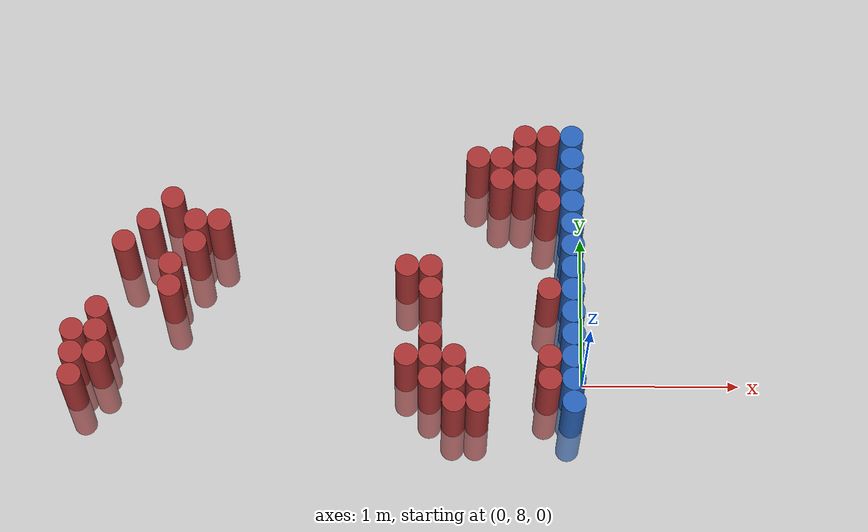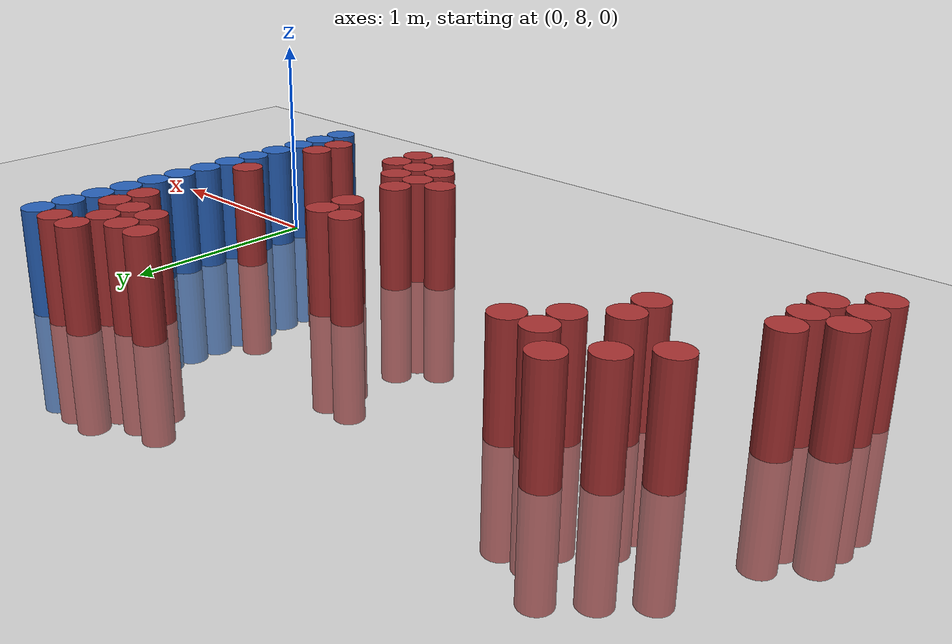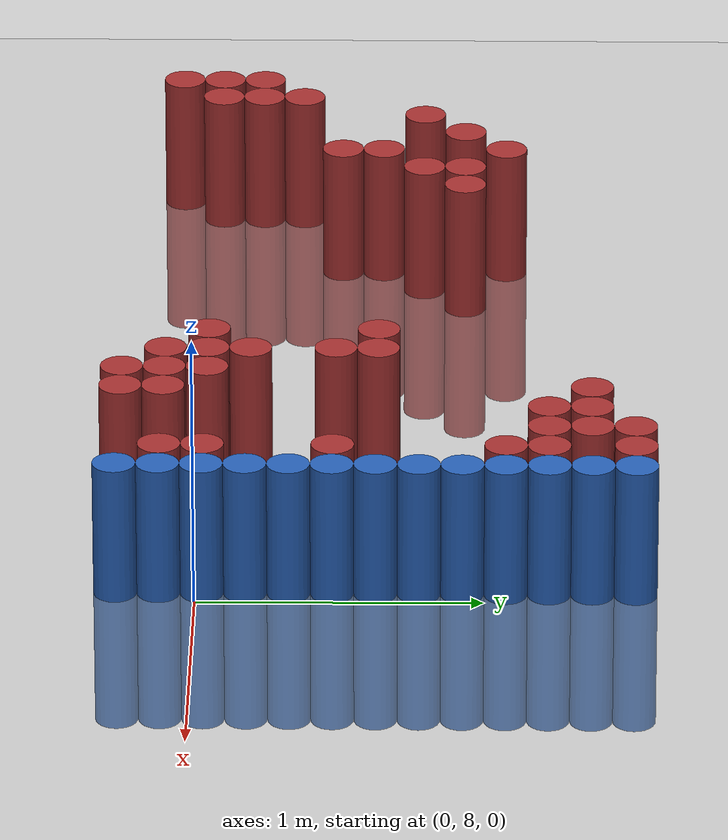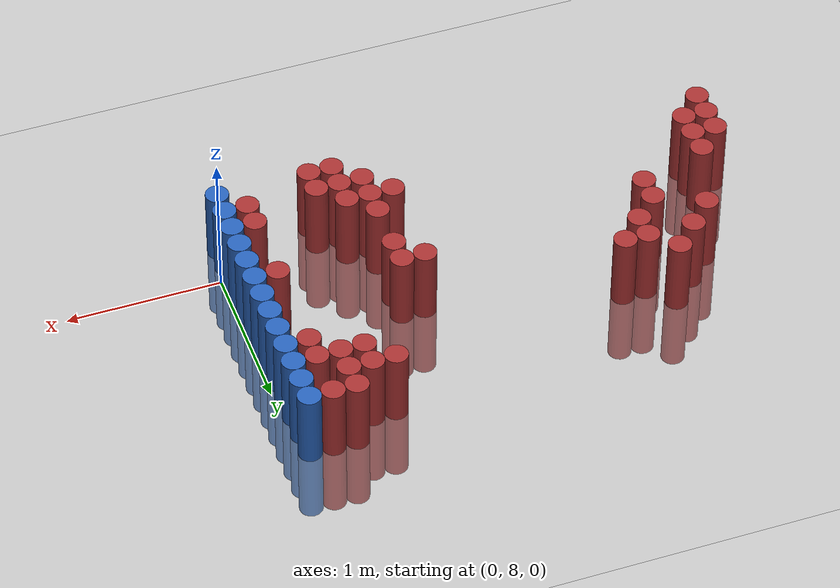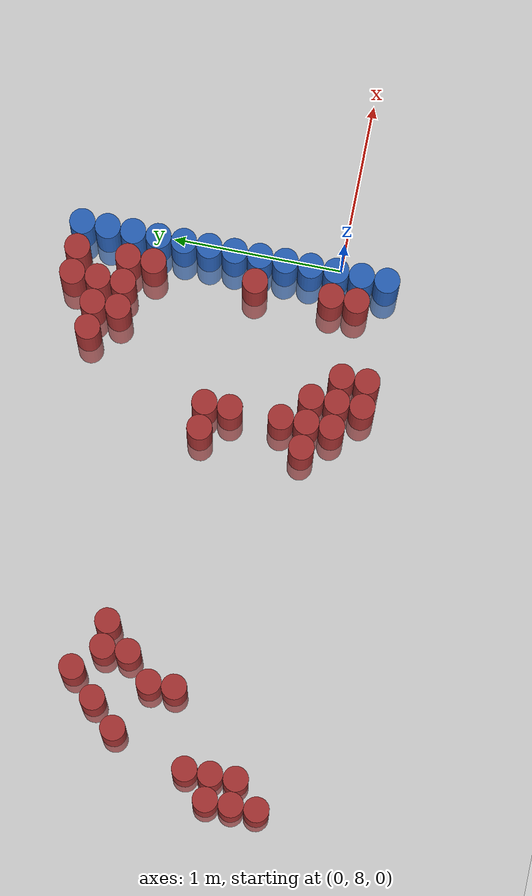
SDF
<sdf version="1.6">
 <world name="default">
  <model name="ground_plane">
   <static>1</static>
   <link name="link">
    <collision name="collision">
     <geometry><plane><normal>0 0 1</normal><size>100 100</size></plane></geometry>
     <surface><friction><ode><mu>100</mu><mu2>50</mu2></ode></friction></surface>
    </collision>
    <visual name="visual">
     <cast_shadows>0</cast_shadows>
     <geometry><plane><normal>0 0 1</normal><size>100 100</size></plane></geometry>
     <material>
      <script><uri>file://media/materials/scripts/gazebo.material</uri><name>Gazebo/Grey</name></script>
     </material>
    </visual>
   </link>
  </model>
  <model name="unit_cylinder_177">
   <static>1</static>
   <pose>-3.225000 7.875000 0.000000 0.000000 0.000000 0.000000</pose>
   <link name="link">
    <inertial>
     <mass>1</mass>
     <inertia><ixx>0.145833</ixx><ixy>0</ixy><ixz>0</ixz><iyy>0.145833</iyy><iyz>0</iyz><izz>0.125</izz></inertia>
    </inertial>
    <collision name="collision">
     <geometry><cylinder><radius>0.075000</radius><length>1</length></cylinder></geometry>
    </collision>
    <visual name="visual">
     <geometry><cylinder><radius>0.075000</radius><length>1</length></cylinder></geometry>
     <material>
      <ambient>0.648000 0.192000 0.192000 1</ambient>
      <diffuse>0.648000 0.192000 0.192000 1</diffuse>
     </material>
     <material>
      <script><name>Gazebo/Grey</name><uri>file://media/materials/scripts/gazebo.material</uri></script>
     </material>
    </visual>
   </link>
  </model>
  <model name="unit_cylinder_178">
   <static>1</static>
   <pose>-3.225000 8.025000 0.000000 0.000000 0.000000 0.000000</pose>
   <link name="link">
    <inertial>
     <mass>1</mass>
     <inertia><ixx>0.145833</ixx><ixy>0</ixy><ixz>0</ixz><iyy>0.145833</iyy><iyz>0</iyz><izz>0.125</izz></inertia>
    </inertial>
    <collision name="collision">
     <geometry><cylinder><radius>0.075000</radius><length>1</length></cylinder></geometry>
    </collision>
    <visual name="visual">
     <geometry><cylinder><radius>0.075000</radius><length>1</length></cylinder></geometry>
     <material>
      <ambient>0.648000 0.192000 0.192000 1</ambient>
      <diffuse>0.648000 0.192000 0.192000 1</diffuse>
     </material>
     <material>
      <script><name>Gazebo/Grey</name><uri>file://media/materials/scripts/gazebo.material</uri></script>
     </material>
    </visual>
   </link>
  </model>
  <model name="unit_cylinder_179">
   <static>1</static>
   <pose>-3.225000 8.175000 0.000000 0.000000 0.000000 0.000000</pose>
   <link name="link">
    <inertial>
     <mass>1</mass>
     <inertia><ixx>0.145833</ixx><ixy>0</ixy><ixz>0</ixz><iyy>0.145833</iyy><iyz>0</iyz><izz>0.125</izz></inertia>
    </inertial>
    <collision name="collision">
     <geometry><cylinder><radius>0.075000</radius><length>1</length></cylinder></geometry>
    </collision>
    <visual name="visual">
     <geometry><cylinder><radius>0.075000</radius><length>1</length></cylinder></geometry>
     <material>
      <ambient>0.648000 0.192000 0.192000 1</ambient>
      <diffuse>0.648000 0.192000 0.192000 1</diffuse>
     </material>
     <material>
      <script><name>Gazebo/Grey</name><uri>file://media/materials/scripts/gazebo.material</uri></script>
     </material>
    </visual>
   </link>
  </model>
  <model name="unit_cylinder_187">
   <static>1</static>
   <pose>-3.075000 8.025000 0.000000 0.000000 0.000000 0.000000</pose>
   <link name="link">
    <inertial>
     <mass>1</mass>
     <inertia><ixx>0.145833</ixx><ixy>0</ixy><ixz>0</ixz><iyy>0.145833</iyy><iyz>0</iyz><izz>0.125</izz></inertia>
    </inertial>
    <collision name="collision">
     <geometry><cylinder><radius>0.075000</radius><length>1</length></cylinder></geometry>
    </collision>
    <visual name="visual">
     <geometry><cylinder><radius>0.075000</radius><length>1</length></cylinder></geometry>
     <material>
      <ambient>0.648000 0.192000 0.192000 1</ambient>
      <diffuse>0.648000 0.192000 0.192000 1</diffuse>
     </material>
     <material>
      <script><name>Gazebo/Grey</name><uri>file://media/materials/scripts/gazebo.material</uri></script>
     </material>
    </visual>
   </link>
  </model>
  <model name="unit_cylinder_188">
   <static>1</static>
   <pose>-3.075000 8.175000 0.000000 0.000000 0.000000 0.000000</pose>
   <link name="link">
    <inertial>
     <mass>1</mass>
     <inertia><ixx>0.145833</ixx><ixy>0</ixy><ixz>0</ixz><iyy>0.145833</iyy><iyz>0</iyz><izz>0.125</izz></inertia>
    </inertial>
    <collision name="collision">
     <geometry><cylinder><radius>0.075000</radius><length>1</length></cylinder></geometry>
    </collision>
    <visual name="visual">
     <geometry><cylinder><radius>0.075000</radius><length>1</length></cylinder></geometry>
     <material>
      <ambient>0.648000 0.192000 0.192000 1</ambient>
      <diffuse>0.648000 0.192000 0.192000 1</diffuse>
     </material>
     <material>
      <script><name>Gazebo/Grey</name><uri>file://media/materials/scripts/gazebo.material</uri></script>
     </material>
    </visual>
   </link>
  </model>
  <model name="unit_cylinder_189">
   <static>1</static>
   <pose>-3.075000 8.325000 0.000000 0.000000 0.000000 0.000000</pose>
   <link name="link">
    <inertial>
     <mass>1</mass>
     <inertia><ixx>0.145833</ixx><ixy>0</ixy><ixz>0</ixz><iyy>0.145833</iyy><iyz>0</iyz><izz>0.125</izz></inertia>
    </inertial>
    <collision name="collision">
     <geometry><cylinder><radius>0.075000</radius><length>1</length></cylinder></geometry>
    </collision>
    <visual name="visual">
     <geometry><cylinder><radius>0.075000</radius><length>1</length></cylinder></geometry>
     <material>
      <ambient>0.648000 0.192000 0.192000 1</ambient>
      <diffuse>0.648000 0.192000 0.192000 1</diffuse>
     </material>
     <material>
      <script><name>Gazebo/Grey</name><uri>file://media/materials/scripts/gazebo.material</uri></script>
     </material>
    </visual>
   </link>
  </model>
  <model name="unit_cylinder_194">
   <static>1</static>
   <pose>-2.925000 8.775000 0.000000 0.000000 0.000000 0.000000</pose>
   <link name="link">
    <inertial>
     <mass>1</mass>
     <inertia><ixx>0.145833</ixx><ixy>0</ixy><ixz>0</ixz><iyy>0.145833</iyy><iyz>0</iyz><izz>0.125</izz></inertia>
    </inertial>
    <collision name="collision">
     <geometry><cylinder><radius>0.075000</radius><length>1</length></cylinder></geometry>
    </collision>
    <visual name="visual">
     <geometry><cylinder><radius>0.075000</radius><length>1</length></cylinder></geometry>
     <material>
      <ambient>0.648000 0.192000 0.192000 1</ambient>
      <diffuse>0.648000 0.192000 0.192000 1</diffuse>
     </material>
     <material>
      <script><name>Gazebo/Grey</name><uri>file://media/materials/scripts/gazebo.material</uri></script>
     </material>
    </visual>
   </link>
  </model>
  <model name="unit_cylinder_197">
   <static>1</static>
   <pose>-2.775000 8.925000 0.000000 0.000000 0.000000 0.000000</pose>
   <link name="link">
    <inertial>
     <mass>1</mass>
     <inertia><ixx>0.145833</ixx><ixy>0</ixy><ixz>0</ixz><iyy>0.145833</iyy><iyz>0</iyz><izz>0.125</izz></inertia>
    </inertial>
    <collision name="collision">
     <geometry><cylinder><radius>0.075000</radius><length>1</length></cylinder></geometry>
    </collision>
    <visual name="visual">
     <geometry><cylinder><radius>0.075000</radius><length>1</length></cylinder></geometry>
     <material>
      <ambient>0.648000 0.192000 0.192000 1</ambient>
      <diffuse>0.648000 0.192000 0.192000 1</diffuse>
     </material>
     <material>
      <script><name>Gazebo/Grey</name><uri>file://media/materials/scripts/gazebo.material</uri></script>
     </material>
    </visual>
   </link>
  </model>
  <model name="unit_cylinder_198">
   <static>1</static>
   <pose>-2.625000 8.475000 0.000000 0.000000 0.000000 0.000000</pose>
   <link name="link">
    <inertial>
     <mass>1</mass>
     <inertia><ixx>0.145833</ixx><ixy>0</ixy><ixz>0</ixz><iyy>0.145833</iyy><iyz>0</iyz><izz>0.125</izz></inertia>
    </inertial>
    <collision name="collision">
     <geometry><cylinder><radius>0.075000</radius><length>1</length></cylinder></geometry>
    </collision>
    <visual name="visual">
     <geometry><cylinder><radius>0.075000</radius><length>1</length></cylinder></geometry>
     <material>
      <ambient>0.648000 0.192000 0.192000 1</ambient>
      <diffuse>0.648000 0.192000 0.192000 1</diffuse>
     </material>
     <material>
      <script><name>Gazebo/Grey</name><uri>file://media/materials/scripts/gazebo.material</uri></script>
     </material>
    </visual>
   </link>
  </model>
  <model name="unit_cylinder_199">
   <static>1</static>
   <pose>-2.625000 8.625000 0.000000 0.000000 0.000000 0.000000</pose>
   <link name="link">
    <inertial>
     <mass>1</mass>
     <inertia><ixx>0.145833</ixx><ixy>0</ixy><ixz>0</ixz><iyy>0.145833</iyy><iyz>0</iyz><izz>0.125</izz></inertia>
    </inertial>
    <collision name="collision">
     <geometry><cylinder><radius>0.075000</radius><length>1</length></cylinder></geometry>
    </collision>
    <visual name="visual">
     <geometry><cylinder><radius>0.075000</radius><length>1</length></cylinder></geometry>
     <material>
      <ambient>0.648000 0.192000 0.192000 1</ambient>
      <diffuse>0.648000 0.192000 0.192000 1</diffuse>
     </material>
     <material>
      <script><name>Gazebo/Grey</name><uri>file://media/materials/scripts/gazebo.material</uri></script>
     </material>
    </visual>
   </link>
  </model>
  <model name="unit_cylinder_200">
   <static>1</static>
   <pose>-2.625000 9.075000 0.000000 0.000000 0.000000 0.000000</pose>
   <link name="link">
    <inertial>
     <mass>1</mass>
     <inertia><ixx>0.145833</ixx><ixy>0</ixy><ixz>0</ixz><iyy>0.145833</iyy><iyz>0</iyz><izz>0.125</izz></inertia>
    </inertial>
    <collision name="collision">
     <geometry><cylinder><radius>0.075000</radius><length>1</length></cylinder></geometry>
    </collision>
    <visual name="visual">
     <geometry><cylinder><radius>0.075000</radius><length>1</length></cylinder></geometry>
     <material>
      <ambient>0.648000 0.192000 0.192000 1</ambient>
      <diffuse>0.648000 0.192000 0.192000 1</diffuse>
     </material>
     <material>
      <script><name>Gazebo/Grey</name><uri>file://media/materials/scripts/gazebo.material</uri></script>
     </material>
    </visual>
   </link>
  </model>
  <model name="unit_cylinder_201">
   <static>1</static>
   <pose>-2.475000 8.775000 0.000000 0.000000 0.000000 0.000000</pose>
   <link name="link">
    <inertial>
     <mass>1</mass>
     <inertia><ixx>0.145833</ixx><ixy>0</ixy><ixz>0</ixz><iyy>0.145833</iyy><iyz>0</iyz><izz>0.125</izz></inertia>
    </inertial>
    <collision name="collision">
     <geometry><cylinder><radius>0.075000</radius><length>1</length></cylinder></geometry>
    </collision>
    <visual name="visual">
     <geometry><cylinder><radius>0.075000</radius><length>1</length></cylinder></geometry>
     <material>
      <ambient>0.648000 0.192000 0.192000 1</ambient>
      <diffuse>0.648000 0.192000 0.192000 1</diffuse>
     </material>
     <material>
      <script><name>Gazebo/Grey</name><uri>file://media/materials/scripts/gazebo.material</uri></script>
     </material>
    </visual>
   </link>
  </model>
  <model name="unit_cylinder_202">
   <static>1</static>
   <pose>-2.475000 8.925000 0.000000 0.000000 0.000000 0.000000</pose>
   <link name="link">
    <inertial>
     <mass>1</mass>
     <inertia><ixx>0.145833</ixx><ixy>0</ixy><ixz>0</ixz><iyy>0.145833</iyy><iyz>0</iyz><izz>0.125</izz></inertia>
    </inertial>
    <collision name="collision">
     <geometry><cylinder><radius>0.075000</radius><length>1</length></cylinder></geometry>
    </collision>
    <visual name="visual">
     <geometry><cylinder><radius>0.075000</radius><length>1</length></cylinder></geometry>
     <material>
      <ambient>0.648000 0.192000 0.192000 1</ambient>
      <diffuse>0.648000 0.192000 0.192000 1</diffuse>
     </material>
     <material>
      <script><name>Gazebo/Grey</name><uri>file://media/materials/scripts/gazebo.material</uri></script>
     </material>
    </visual>
   </link>
  </model>
  <model name="unit_cylinder_203">
   <static>1</static>
   <pose>-2.325000 8.925000 0.000000 0.000000 0.000000 0.000000</pose>
   <link name="link">
    <inertial>
     <mass>1</mass>
     <inertia><ixx>0.145833</ixx><ixy>0</ixy><ixz>0</ixz><iyy>0.145833</iyy><iyz>0</iyz><izz>0.125</izz></inertia>
    </inertial>
    <collision name="collision">
     <geometry><cylinder><radius>0.075000</radius><length>1</length></cylinder></geometry>
    </collision>
    <visual name="visual">
     <geometry><cylinder><radius>0.075000</radius><length>1</length></cylinder></geometry>
     <material>
      <ambient>0.648000 0.192000 0.192000 1</ambient>
      <diffuse>0.648000 0.192000 0.192000 1</diffuse>
     </material>
     <material>
      <script><name>Gazebo/Grey</name><uri>file://media/materials/scripts/gazebo.material</uri></script>
     </material>
    </visual>
   </link>
  </model>
  <model name="unit_cylinder_223">
   <static>1</static>
   <pose>-1.125000 8.025000 0.000000 0.000000 0.000000 0.000000</pose>
   <link name="link">
    <inertial>
     <mass>1</mass>
     <inertia><ixx>0.145833</ixx><ixy>0</ixy><ixz>0</ixz><iyy>0.145833</iyy><iyz>0</iyz><izz>0.125</izz></inertia>
    </inertial>
    <collision name="collision">
     <geometry><cylinder><radius>0.075000</radius><length>1</length></cylinder></geometry>
    </collision>
    <visual name="visual">
     <geometry><cylinder><radius>0.075000</radius><length>1</length></cylinder></geometry>
     <material>
      <ambient>0.648000 0.192000 0.192000 1</ambient>
      <diffuse>0.648000 0.192000 0.192000 1</diffuse>
     </material>
     <material>
      <script><name>Gazebo/Grey</name><uri>file://media/materials/scripts/gazebo.material</uri></script>
     </material>
    </visual>
   </link>
  </model>
  <model name="unit_cylinder_224">
   <static>1</static>
   <pose>-1.125000 8.625000 0.000000 0.000000 0.000000 0.000000</pose>
   <link name="link">
    <inertial>
     <mass>1</mass>
     <inertia><ixx>0.145833</ixx><ixy>0</ixy><ixz>0</ixz><iyy>0.145833</iyy><iyz>0</iyz><izz>0.125</izz></inertia>
    </inertial>
    <collision name="collision">
     <geometry><cylinder><radius>0.075000</radius><length>1</length></cylinder></geometry>
    </collision>
    <visual name="visual">
     <geometry><cylinder><radius>0.075000</radius><length>1</length></cylinder></geometry>
     <material>
      <ambient>0.648000 0.192000 0.192000 1</ambient>
      <diffuse>0.648000 0.192000 0.192000 1</diffuse>
     </material>
     <material>
      <script><name>Gazebo/Grey</name><uri>file://media/materials/scripts/gazebo.material</uri></script>
     </material>
    </visual>
   </link>
  </model>
  <model name="unit_cylinder_231">
   <static>1</static>
   <pose>-0.975000 7.875000 0.000000 0.000000 0.000000 0.000000</pose>
   <link name="link">
    <inertial>
     <mass>1</mass>
     <inertia><ixx>0.145833</ixx><ixy>0</ixy><ixz>0</ixz><iyy>0.145833</iyy><iyz>0</iyz><izz>0.125</izz></inertia>
    </inertial>
    <collision name="collision">
     <geometry><cylinder><radius>0.075000</radius><length>1</length></cylinder></geometry>
    </collision>
    <visual name="visual">
     <geometry><cylinder><radius>0.075000</radius><length>1</length></cylinder></geometry>
     <material>
      <ambient>0.648000 0.192000 0.192000 1</ambient>
      <diffuse>0.648000 0.192000 0.192000 1</diffuse>
     </material>
     <material>
      <script><name>Gazebo/Grey</name><uri>file://media/materials/scripts/gazebo.material</uri></script>
     </material>
    </visual>
   </link>
  </model>
  <model name="unit_cylinder_232">
   <static>1</static>
   <pose>-0.975000 8.025000 0.000000 0.000000 0.000000 0.000000</pose>
   <link name="link">
    <inertial>
     <mass>1</mass>
     <inertia><ixx>0.145833</ixx><ixy>0</ixy><ixz>0</ixz><iyy>0.145833</iyy><iyz>0</iyz><izz>0.125</izz></inertia>
    </inertial>
    <collision name="collision">
     <geometry><cylinder><radius>0.075000</radius><length>1</length></cylinder></geometry>
    </collision>
    <visual name="visual">
     <geometry><cylinder><radius>0.075000</radius><length>1</length></cylinder></geometry>
     <material>
      <ambient>0.648000 0.192000 0.192000 1</ambient>
      <diffuse>0.648000 0.192000 0.192000 1</diffuse>
     </material>
     <material>
      <script><name>Gazebo/Grey</name><uri>file://media/materials/scripts/gazebo.material</uri></script>
     </material>
    </visual>
   </link>
  </model>
  <model name="unit_cylinder_233">
   <static>1</static>
   <pose>-0.975000 8.175000 0.000000 0.000000 0.000000 0.000000</pose>
   <link name="link">
    <inertial>
     <mass>1</mass>
     <inertia><ixx>0.145833</ixx><ixy>0</ixy><ixz>0</ixz><iyy>0.145833</iyy><iyz>0</iyz><izz>0.125</izz></inertia>
    </inertial>
    <collision name="collision">
     <geometry><cylinder><radius>0.075000</radius><length>1</length></cylinder></geometry>
    </collision>
    <visual name="visual">
     <geometry><cylinder><radius>0.075000</radius><length>1</length></cylinder></geometry>
     <material>
      <ambient>0.648000 0.192000 0.192000 1</ambient>
      <diffuse>0.648000 0.192000 0.192000 1</diffuse>
     </material>
     <material>
      <script><name>Gazebo/Grey</name><uri>file://media/materials/scripts/gazebo.material</uri></script>
     </material>
    </visual>
   </link>
  </model>
  <model name="unit_cylinder_234">
   <static>1</static>
   <pose>-0.975000 8.475000 0.000000 0.000000 0.000000 0.000000</pose>
   <link name="link">
    <inertial>
     <mass>1</mass>
     <inertia><ixx>0.145833</ixx><ixy>0</ixy><ixz>0</ixz><iyy>0.145833</iyy><iyz>0</iyz><izz>0.125</izz></inertia>
    </inertial>
    <collision name="collision">
     <geometry><cylinder><radius>0.075000</radius><length>1</length></cylinder></geometry>
    </collision>
    <visual name="visual">
     <geometry><cylinder><radius>0.075000</radius><length>1</length></cylinder></geometry>
     <material>
      <ambient>0.648000 0.192000 0.192000 1</ambient>
      <diffuse>0.648000 0.192000 0.192000 1</diffuse>
     </material>
     <material>
      <script><name>Gazebo/Grey</name><uri>file://media/materials/scripts/gazebo.material</uri></script>
     </material>
    </visual>
   </link>
  </model>
  <model name="unit_cylinder_235">
   <static>1</static>
   <pose>-0.975000 8.625000 0.000000 0.000000 0.000000 0.000000</pose>
   <link name="link">
    <inertial>
     <mass>1</mass>
     <inertia><ixx>0.145833</ixx><ixy>0</ixy><ixz>0</ixz><iyy>0.145833</iyy><iyz>0</iyz><izz>0.125</izz></inertia>
    </inertial>
    <collision name="collision">
     <geometry><cylinder><radius>0.075000</radius><length>1</length></cylinder></geometry>
    </collision>
    <visual name="visual">
     <geometry><cylinder><radius>0.075000</radius><length>1</length></cylinder></geometry>
     <material>
      <ambient>0.648000 0.192000 0.192000 1</ambient>
      <diffuse>0.648000 0.192000 0.192000 1</diffuse>
     </material>
     <material>
      <script><name>Gazebo/Grey</name><uri>file://media/materials/scripts/gazebo.material</uri></script>
     </material>
    </visual>
   </link>
  </model>
  <model name="unit_cylinder_241">
   <static>1</static>
   <pose>-0.825000 7.725000 0.000000 0.000000 0.000000 0.000000</pose>
   <link name="link">
    <inertial>
     <mass>1</mass>
     <inertia><ixx>0.145833</ixx><ixy>0</ixy><ixz>0</ixz><iyy>0.145833</iyy><iyz>0</iyz><izz>0.125</izz></inertia>
    </inertial>
    <collision name="collision">
     <geometry><cylinder><radius>0.075000</radius><length>1</length></cylinder></geometry>
    </collision>
    <visual name="visual">
     <geometry><cylinder><radius>0.075000</radius><length>1</length></cylinder></geometry>
     <material>
      <ambient>0.648000 0.192000 0.192000 1</ambient>
      <diffuse>0.648000 0.192000 0.192000 1</diffuse>
     </material>
     <material>
      <script><name>Gazebo/Grey</name><uri>file://media/materials/scripts/gazebo.material</uri></script>
     </material>
    </visual>
   </link>
  </model>
  <model name="unit_cylinder_242">
   <static>1</static>
   <pose>-0.825000 7.875000 0.000000 0.000000 0.000000 0.000000</pose>
   <link name="link">
    <inertial>
     <mass>1</mass>
     <inertia><ixx>0.145833</ixx><ixy>0</ixy><ixz>0</ixz><iyy>0.145833</iyy><iyz>0</iyz><izz>0.125</izz></inertia>
    </inertial>
    <collision name="collision">
     <geometry><cylinder><radius>0.075000</radius><length>1</length></cylinder></geometry>
    </collision>
    <visual name="visual">
     <geometry><cylinder><radius>0.075000</radius><length>1</length></cylinder></geometry>
     <material>
      <ambient>0.648000 0.192000 0.192000 1</ambient>
      <diffuse>0.648000 0.192000 0.192000 1</diffuse>
     </material>
     <material>
      <script><name>Gazebo/Grey</name><uri>file://media/materials/scripts/gazebo.material</uri></script>
     </material>
    </visual>
   </link>
  </model>
  <model name="unit_cylinder_243">
   <static>1</static>
   <pose>-0.825000 8.025000 0.000000 0.000000 0.000000 0.000000</pose>
   <link name="link">
    <inertial>
     <mass>1</mass>
     <inertia><ixx>0.145833</ixx><ixy>0</ixy><ixz>0</ixz><iyy>0.145833</iyy><iyz>0</iyz><izz>0.125</izz></inertia>
    </inertial>
    <collision name="collision">
     <geometry><cylinder><radius>0.075000</radius><length>1</length></cylinder></geometry>
    </collision>
    <visual name="visual">
     <geometry><cylinder><radius>0.075000</radius><length>1</length></cylinder></geometry>
     <material>
      <ambient>0.648000 0.192000 0.192000 1</ambient>
      <diffuse>0.648000 0.192000 0.192000 1</diffuse>
     </material>
     <material>
      <script><name>Gazebo/Grey</name><uri>file://media/materials/scripts/gazebo.material</uri></script>
     </material>
    </visual>
   </link>
  </model>
  <model name="unit_cylinder_247">
   <static>1</static>
   <pose>-0.675000 7.725000 0.000000 0.000000 0.000000 0.000000</pose>
   <link name="link">
    <inertial>
     <mass>1</mass>
     <inertia><ixx>0.145833</ixx><ixy>0</ixy><ixz>0</ixz><iyy>0.145833</iyy><iyz>0</iyz><izz>0.125</izz></inertia>
    </inertial>
    <collision name="collision">
     <geometry><cylinder><radius>0.075000</radius><length>1</length></cylinder></geometry>
    </collision>
    <visual name="visual">
     <geometry><cylinder><radius>0.075000</radius><length>1</length></cylinder></geometry>
     <material>
      <ambient>0.648000 0.192000 0.192000 1</ambient>
      <diffuse>0.648000 0.192000 0.192000 1</diffuse>
     </material>
     <material>
      <script><name>Gazebo/Grey</name><uri>file://media/materials/scripts/gazebo.material</uri></script>
     </material>
    </visual>
   </link>
  </model>
  <model name="unit_cylinder_248">
   <static>1</static>
   <pose>-0.675000 7.875000 0.000000 0.000000 0.000000 0.000000</pose>
   <link name="link">
    <inertial>
     <mass>1</mass>
     <inertia><ixx>0.145833</ixx><ixy>0</ixy><ixz>0</ixz><iyy>0.145833</iyy><iyz>0</iyz><izz>0.125</izz></inertia>
    </inertial>
    <collision name="collision">
     <geometry><cylinder><radius>0.075000</radius><length>1</length></cylinder></geometry>
    </collision>
    <visual name="visual">
     <geometry><cylinder><radius>0.075000</radius><length>1</length></cylinder></geometry>
     <material>
      <ambient>0.648000 0.192000 0.192000 1</ambient>
      <diffuse>0.648000 0.192000 0.192000 1</diffuse>
     </material>
     <material>
      <script><name>Gazebo/Grey</name><uri>file://media/materials/scripts/gazebo.material</uri></script>
     </material>
    </visual>
   </link>
  </model>
  <model name="unit_cylinder_249">
   <static>1</static>
   <pose>-0.675000 9.375000 0.000000 0.000000 0.000000 0.000000</pose>
   <link name="link">
    <inertial>
     <mass>1</mass>
     <inertia><ixx>0.145833</ixx><ixy>0</ixy><ixz>0</ixz><iyy>0.145833</iyy><iyz>0</iyz><izz>0.125</izz></inertia>
    </inertial>
    <collision name="collision">
     <geometry><cylinder><radius>0.075000</radius><length>1</length></cylinder></geometry>
    </collision>
    <visual name="visual">
     <geometry><cylinder><radius>0.075000</radius><length>1</length></cylinder></geometry>
     <material>
      <ambient>0.648000 0.192000 0.192000 1</ambient>
      <diffuse>0.648000 0.192000 0.192000 1</diffuse>
     </material>
     <material>
      <script><name>Gazebo/Grey</name><uri>file://media/materials/scripts/gazebo.material</uri></script>
     </material>
    </visual>
   </link>
  </model>
  <model name="unit_cylinder_252">
   <static>1</static>
   <pose>-0.525000 9.225000 0.000000 0.000000 0.000000 0.000000</pose>
   <link name="link">
    <inertial>
     <mass>1</mass>
     <inertia><ixx>0.145833</ixx><ixy>0</ixy><ixz>0</ixz><iyy>0.145833</iyy><iyz>0</iyz><izz>0.125</izz></inertia>
    </inertial>
    <collision name="collision">
     <geometry><cylinder><radius>0.075000</radius><length>1</length></cylinder></geometry>
    </collision>
    <visual name="visual">
     <geometry><cylinder><radius>0.075000</radius><length>1</length></cylinder></geometry>
     <material>
      <ambient>0.648000 0.192000 0.192000 1</ambient>
      <diffuse>0.648000 0.192000 0.192000 1</diffuse>
     </material>
     <material>
      <script><name>Gazebo/Grey</name><uri>file://media/materials/scripts/gazebo.material</uri></script>
     </material>
    </visual>
   </link>
  </model>
  <model name="unit_cylinder_253">
   <static>1</static>
   <pose>-0.525000 9.375000 0.000000 0.000000 0.000000 0.000000</pose>
   <link name="link">
    <inertial>
     <mass>1</mass>
     <inertia><ixx>0.145833</ixx><ixy>0</ixy><ixz>0</ixz><iyy>0.145833</iyy><iyz>0</iyz><izz>0.125</izz></inertia>
    </inertial>
    <collision name="collision">
     <geometry><cylinder><radius>0.075000</radius><length>1</length></cylinder></geometry>
    </collision>
    <visual name="visual">
     <geometry><cylinder><radius>0.075000</radius><length>1</length></cylinder></geometry>
     <material>
      <ambient>0.648000 0.192000 0.192000 1</ambient>
      <diffuse>0.648000 0.192000 0.192000 1</diffuse>
     </material>
     <material>
      <script><name>Gazebo/Grey</name><uri>file://media/materials/scripts/gazebo.material</uri></script>
     </material>
    </visual>
   </link>
  </model>
  <model name="unit_cylinder_259">
   <static>1</static>
   <pose>-0.375000 9.225000 0.000000 0.000000 0.000000 0.000000</pose>
   <link name="link">
    <inertial>
     <mass>1</mass>
     <inertia><ixx>0.145833</ixx><ixy>0</ixy><ixz>0</ixz><iyy>0.145833</iyy><iyz>0</iyz><izz>0.125</izz></inertia>
    </inertial>
    <collision name="collision">
     <geometry><cylinder><radius>0.075000</radius><length>1</length></cylinder></geometry>
    </collision>
    <visual name="visual">
     <geometry><cylinder><radius>0.075000</radius><length>1</length></cylinder></geometry>
     <material>
      <ambient>0.648000 0.192000 0.192000 1</ambient>
      <diffuse>0.648000 0.192000 0.192000 1</diffuse>
     </material>
     <material>
      <script><name>Gazebo/Grey</name><uri>file://media/materials/scripts/gazebo.material</uri></script>
     </material>
    </visual>
   </link>
  </model>
  <model name="unit_cylinder_260">
   <static>1</static>
   <pose>-0.375000 9.375000 0.000000 0.000000 0.000000 0.000000</pose>
   <link name="link">
    <inertial>
     <mass>1</mass>
     <inertia><ixx>0.145833</ixx><ixy>0</ixy><ixz>0</ixz><iyy>0.145833</iyy><iyz>0</iyz><izz>0.125</izz></inertia>
    </inertial>
    <collision name="collision">
     <geometry><cylinder><radius>0.075000</radius><length>1</length></cylinder></geometry>
    </collision>
    <visual name="visual">
     <geometry><cylinder><radius>0.075000</radius><length>1</length></cylinder></geometry>
     <material>
      <ambient>0.648000 0.192000 0.192000 1</ambient>
      <diffuse>0.648000 0.192000 0.192000 1</diffuse>
     </material>
     <material>
      <script><name>Gazebo/Grey</name><uri>file://media/materials/scripts/gazebo.material</uri></script>
     </material>
    </visual>
   </link>
  </model>
  <model name="unit_cylinder_261">
   <static>1</static>
   <pose>-0.375000 9.525000 0.000000 0.000000 0.000000 0.000000</pose>
   <link name="link">
    <inertial>
     <mass>1</mass>
     <inertia><ixx>0.145833</ixx><ixy>0</ixy><ixz>0</ixz><iyy>0.145833</iyy><iyz>0</iyz><izz>0.125</izz></inertia>
    </inertial>
    <collision name="collision">
     <geometry><cylinder><radius>0.075000</radius><length>1</length></cylinder></geometry>
    </collision>
    <visual name="visual">
     <geometry><cylinder><radius>0.075000</radius><length>1</length></cylinder></geometry>
     <material>
      <ambient>0.648000 0.192000 0.192000 1</ambient>
      <diffuse>0.648000 0.192000 0.192000 1</diffuse>
     </material>
     <material>
      <script><name>Gazebo/Grey</name><uri>file://media/materials/scripts/gazebo.material</uri></script>
     </material>
    </visual>
   </link>
  </model>
  <model name="unit_cylinder_271">
   <static>1</static>
   <pose>-0.225000 7.875000 0.000000 0.000000 0.000000 0.000000</pose>
   <link name="link">
    <inertial>
     <mass>1</mass>
     <inertia><ixx>0.145833</ixx><ixy>0</ixy><ixz>0</ixz><iyy>0.145833</iyy><iyz>0</iyz><izz>0.125</izz></inertia>
    </inertial>
    <collision name="collision">
     <geometry><cylinder><radius>0.075000</radius><length>1</length></cylinder></geometry>
    </collision>
    <visual name="visual">
     <geometry><cylinder><radius>0.075000</radius><length>1</length></cylinder></geometry>
     <material>
      <ambient>0.648000 0.192000 0.192000 1</ambient>
      <diffuse>0.648000 0.192000 0.192000 1</diffuse>
     </material>
     <material>
      <script><name>Gazebo/Grey</name><uri>file://media/materials/scripts/gazebo.material</uri></script>
     </material>
    </visual>
   </link>
  </model>
  <model name="unit_cylinder_272">
   <static>1</static>
   <pose>-0.225000 8.025000 0.000000 0.000000 0.000000 0.000000</pose>
   <link name="link">
    <inertial>
     <mass>1</mass>
     <inertia><ixx>0.145833</ixx><ixy>0</ixy><ixz>0</ixz><iyy>0.145833</iyy><iyz>0</iyz><izz>0.125</izz></inertia>
    </inertial>
    <collision name="collision">
     <geometry><cylinder><radius>0.075000</radius><length>1</length></cylinder></geometry>
    </collision>
    <visual name="visual">
     <geometry><cylinder><radius>0.075000</radius><length>1</length></cylinder></geometry>
     <material>
      <ambient>0.648000 0.192000 0.192000 1</ambient>
      <diffuse>0.648000 0.192000 0.192000 1</diffuse>
     </material>
     <material>
      <script><name>Gazebo/Grey</name><uri>file://media/materials/scripts/gazebo.material</uri></script>
     </material>
    </visual>
   </link>
  </model>
  <model name="unit_cylinder_273">
   <static>1</static>
   <pose>-0.225000 8.475000 0.000000 0.000000 0.000000 0.000000</pose>
   <link name="link">
    <inertial>
     <mass>1</mass>
     <inertia><ixx>0.145833</ixx><ixy>0</ixy><ixz>0</ixz><iyy>0.145833</iyy><iyz>0</iyz><izz>0.125</izz></inertia>
    </inertial>
    <collision name="collision">
     <geometry><cylinder><radius>0.075000</radius><length>1</length></cylinder></geometry>
    </collision>
    <visual name="visual">
     <geometry><cylinder><radius>0.075000</radius><length>1</length></cylinder></geometry>
     <material>
      <ambient>0.648000 0.192000 0.192000 1</ambient>
      <diffuse>0.648000 0.192000 0.192000 1</diffuse>
     </material>
     <material>
      <script><name>Gazebo/Grey</name><uri>file://media/materials/scripts/gazebo.material</uri></script>
     </material>
    </visual>
   </link>
  </model>
  <model name="unit_cylinder_274">
   <static>1</static>
   <pose>-0.225000 9.075000 0.000000 0.000000 0.000000 0.000000</pose>
   <link name="link">
    <inertial>
     <mass>1</mass>
     <inertia><ixx>0.145833</ixx><ixy>0</ixy><ixz>0</ixz><iyy>0.145833</iyy><iyz>0</iyz><izz>0.125</izz></inertia>
    </inertial>
    <collision name="collision">
     <geometry><cylinder><radius>0.075000</radius><length>1</length></cylinder></geometry>
    </collision>
    <visual name="visual">
     <geometry><cylinder><radius>0.075000</radius><length>1</length></cylinder></geometry>
     <material>
      <ambient>0.648000 0.192000 0.192000 1</ambient>
      <diffuse>0.648000 0.192000 0.192000 1</diffuse>
     </material>
     <material>
      <script><name>Gazebo/Grey</name><uri>file://media/materials/scripts/gazebo.material</uri></script>
     </material>
    </visual>
   </link>
  </model>
  <model name="unit_cylinder_275">
   <static>1</static>
   <pose>-0.225000 9.225000 0.000000 0.000000 0.000000 0.000000</pose>
   <link name="link">
    <inertial>
     <mass>1</mass>
     <inertia><ixx>0.145833</ixx><ixy>0</ixy><ixz>0</ixz><iyy>0.145833</iyy><iyz>0</iyz><izz>0.125</izz></inertia>
    </inertial>
    <collision name="collision">
     <geometry><cylinder><radius>0.075000</radius><length>1</length></cylinder></geometry>
    </collision>
    <visual name="visual">
     <geometry><cylinder><radius>0.075000</radius><length>1</length></cylinder></geometry>
     <material>
      <ambient>0.648000 0.192000 0.192000 1</ambient>
      <diffuse>0.648000 0.192000 0.192000 1</diffuse>
     </material>
     <material>
      <script><name>Gazebo/Grey</name><uri>file://media/materials/scripts/gazebo.material</uri></script>
     </material>
    </visual>
   </link>
  </model>
  <model name="unit_cylinder_276">
   <static>1</static>
   <pose>-0.225000 9.525000 0.000000 0.000000 0.000000 0.000000</pose>
   <link name="link">
    <inertial>
     <mass>1</mass>
     <inertia><ixx>0.145833</ixx><ixy>0</ixy><ixz>0</ixz><iyy>0.145833</iyy><iyz>0</iyz><izz>0.125</izz></inertia>
    </inertial>
    <collision name="collision">
     <geometry><cylinder><radius>0.075000</radius><length>1</length></cylinder></geometry>
    </collision>
    <visual name="visual">
     <geometry><cylinder><radius>0.075000</radius><length>1</length></cylinder></geometry>
     <material>
      <ambient>0.648000 0.192000 0.192000 1</ambient>
      <diffuse>0.648000 0.192000 0.192000 1</diffuse>
     </material>
     <material>
      <script><name>Gazebo/Grey</name><uri>file://media/materials/scripts/gazebo.material</uri></script>
     </material>
    </visual>
   </link>
  </model>
  <model name="unit_cylinder_294">
   <static>1</static>
   <pose>-0.075000 7.725000 0.000000 0.000000 0.000000 0.000000</pose>
   <link name="link">
    <inertial>
     <mass>1</mass>
     <inertia><ixx>0.145833</ixx><ixy>0</ixy><ixz>0</ixz><iyy>0.145833</iyy><iyz>0</iyz><izz>0.125</izz></inertia>
    </inertial>
    <collision name="collision">
     <geometry><cylinder><radius>0.075000</radius><length>1</length></cylinder></geometry>
    </collision>
    <visual name="visual">
     <geometry><cylinder><radius>0.075000</radius><length>1</length></cylinder></geometry>
     <material>
      <ambient>0.152000 0.379000 0.720000 1</ambient>
      <diffuse>0.152000 0.379000 0.720000 1</diffuse>
     </material>
     <material>
      <script><name>Gazebo/Grey</name><uri>file://media/materials/scripts/gazebo.material</uri></script>
     </material>
    </visual>
   </link>
  </model>
  <model name="unit_cylinder_295">
   <static>1</static>
   <pose>-0.075000 7.875000 0.000000 0.000000 0.000000 0.000000</pose>
   <link name="link">
    <inertial>
     <mass>1</mass>
     <inertia><ixx>0.145833</ixx><ixy>0</ixy><ixz>0</ixz><iyy>0.145833</iyy><iyz>0</iyz><izz>0.125</izz></inertia>
    </inertial>
    <collision name="collision">
     <geometry><cylinder><radius>0.075000</radius><length>1</length></cylinder></geometry>
    </collision>
    <visual name="visual">
     <geometry><cylinder><radius>0.075000</radius><length>1</length></cylinder></geometry>
     <material>
      <ambient>0.152000 0.379000 0.720000 1</ambient>
      <diffuse>0.152000 0.379000 0.720000 1</diffuse>
     </material>
     <material>
      <script><name>Gazebo/Grey</name><uri>file://media/materials/scripts/gazebo.material</uri></script>
     </material>
    </visual>
   </link>
  </model>
  <model name="unit_cylinder_296">
   <static>1</static>
   <pose>-0.075000 8.025000 0.000000 0.000000 0.000000 0.000000</pose>
   <link name="link">
    <inertial>
     <mass>1</mass>
     <inertia><ixx>0.145833</ixx><ixy>0</ixy><ixz>0</ixz><iyy>0.145833</iyy><iyz>0</iyz><izz>0.125</izz></inertia>
    </inertial>
    <collision name="collision">
     <geometry><cylinder><radius>0.075000</radius><length>1</length></cylinder></geometry>
    </collision>
    <visual name="visual">
     <geometry><cylinder><radius>0.075000</radius><length>1</length></cylinder></geometry>
     <material>
      <ambient>0.152000 0.379000 0.720000 1</ambient>
      <diffuse>0.152000 0.379000 0.720000 1</diffuse>
     </material>
     <material>
      <script><name>Gazebo/Grey</name><uri>file://media/materials/scripts/gazebo.material</uri></script>
     </material>
    </visual>
   </link>
  </model>
  <model name="unit_cylinder_297">
   <static>1</static>
   <pose>-0.075000 8.175000 0.000000 0.000000 0.000000 0.000000</pose>
   <link name="link">
    <inertial>
     <mass>1</mass>
     <inertia><ixx>0.145833</ixx><ixy>0</ixy><ixz>0</ixz><iyy>0.145833</iyy><iyz>0</iyz><izz>0.125</izz></inertia>
    </inertial>
    <collision name="collision">
     <geometry><cylinder><radius>0.075000</radius><length>1</length></cylinder></geometry>
    </collision>
    <visual name="visual">
     <geometry><cylinder><radius>0.075000</radius><length>1</length></cylinder></geometry>
     <material>
      <ambient>0.152000 0.379000 0.720000 1</ambient>
      <diffuse>0.152000 0.379000 0.720000 1</diffuse>
     </material>
     <material>
      <script><name>Gazebo/Grey</name><uri>file://media/materials/scripts/gazebo.material</uri></script>
     </material>
    </visual>
   </link>
  </model>
  <model name="unit_cylinder_298">
   <static>1</static>
   <pose>-0.075000 8.325000 0.000000 0.000000 0.000000 0.000000</pose>
   <link name="link">
    <inertial>
     <mass>1</mass>
     <inertia><ixx>0.145833</ixx><ixy>0</ixy><ixz>0</ixz><iyy>0.145833</iyy><iyz>0</iyz><izz>0.125</izz></inertia>
    </inertial>
    <collision name="collision">
     <geometry><cylinder><radius>0.075000</radius><length>1</length></cylinder></geometry>
    </collision>
    <visual name="visual">
     <geometry><cylinder><radius>0.075000</radius><length>1</length></cylinder></geometry>
     <material>
      <ambient>0.152000 0.379000 0.720000 1</ambient>
      <diffuse>0.152000 0.379000 0.720000 1</diffuse>
     </material>
     <material>
      <script><name>Gazebo/Grey</name><uri>file://media/materials/scripts/gazebo.material</uri></script>
     </material>
    </visual>
   </link>
  </model>
  <model name="unit_cylinder_299">
   <static>1</static>
   <pose>-0.075000 8.475000 0.000000 0.000000 0.000000 0.000000</pose>
   <link name="link">
    <inertial>
     <mass>1</mass>
     <inertia><ixx>0.145833</ixx><ixy>0</ixy><ixz>0</ixz><iyy>0.145833</iyy><iyz>0</iyz><izz>0.125</izz></inertia>
    </inertial>
    <collision name="collision">
     <geometry><cylinder><radius>0.075000</radius><length>1</length></cylinder></geometry>
    </collision>
    <visual name="visual">
     <geometry><cylinder><radius>0.075000</radius><length>1</length></cylinder></geometry>
     <material>
      <ambient>0.152000 0.379000 0.720000 1</ambient>
      <diffuse>0.152000 0.379000 0.720000 1</diffuse>
     </material>
     <material>
      <script><name>Gazebo/Grey</name><uri>file://media/materials/scripts/gazebo.material</uri></script>
     </material>
    </visual>
   </link>
  </model>
  <model name="unit_cylinder_300">
   <static>1</static>
   <pose>-0.075000 8.625000 0.000000 0.000000 0.000000 0.000000</pose>
   <link name="link">
    <inertial>
     <mass>1</mass>
     <inertia><ixx>0.145833</ixx><ixy>0</ixy><ixz>0</ixz><iyy>0.145833</iyy><iyz>0</iyz><izz>0.125</izz></inertia>
    </inertial>
    <collision name="collision">
     <geometry><cylinder><radius>0.075000</radius><length>1</length></cylinder></geometry>
    </collision>
    <visual name="visual">
     <geometry><cylinder><radius>0.075000</radius><length>1</length></cylinder></geometry>
     <material>
      <ambient>0.152000 0.379000 0.720000 1</ambient>
      <diffuse>0.152000 0.379000 0.720000 1</diffuse>
     </material>
     <material>
      <script><name>Gazebo/Grey</name><uri>file://media/materials/scripts/gazebo.material</uri></script>
     </material>
    </visual>
   </link>
  </model>
  <model name="unit_cylinder_301">
   <static>1</static>
   <pose>-0.075000 8.775000 0.000000 0.000000 0.000000 0.000000</pose>
   <link name="link">
    <inertial>
     <mass>1</mass>
     <inertia><ixx>0.145833</ixx><ixy>0</ixy><ixz>0</ixz><iyy>0.145833</iyy><iyz>0</iyz><izz>0.125</izz></inertia>
    </inertial>
    <collision name="collision">
     <geometry><cylinder><radius>0.075000</radius><length>1</length></cylinder></geometry>
    </collision>
    <visual name="visual">
     <geometry><cylinder><radius>0.075000</radius><length>1</length></cylinder></geometry>
     <material>
      <ambient>0.152000 0.379000 0.720000 1</ambient>
      <diffuse>0.152000 0.379000 0.720000 1</diffuse>
     </material>
     <material>
      <script><name>Gazebo/Grey</name><uri>file://media/materials/scripts/gazebo.material</uri></script>
     </material>
    </visual>
   </link>
  </model>
  <model name="unit_cylinder_302">
   <static>1</static>
   <pose>-0.075000 8.925000 0.000000 0.000000 0.000000 0.000000</pose>
   <link name="link">
    <inertial>
     <mass>1</mass>
     <inertia><ixx>0.145833</ixx><ixy>0</ixy><ixz>0</ixz><iyy>0.145833</iyy><iyz>0</iyz><izz>0.125</izz></inertia>
    </inertial>
    <collision name="collision">
     <geometry><cylinder><radius>0.075000</radius><length>1</length></cylinder></geometry>
    </collision>
    <visual name="visual">
     <geometry><cylinder><radius>0.075000</radius><length>1</length></cylinder></geometry>
     <material>
      <ambient>0.152000 0.379000 0.720000 1</ambient>
      <diffuse>0.152000 0.379000 0.720000 1</diffuse>
     </material>
     <material>
      <script><name>Gazebo/Grey</name><uri>file://media/materials/scripts/gazebo.material</uri></script>
     </material>
    </visual>
   </link>
  </model>
  <model name="unit_cylinder_303">
   <static>1</static>
   <pose>-0.075000 9.075000 0.000000 0.000000 0.000000 0.000000</pose>
   <link name="link">
    <inertial>
     <mass>1</mass>
     <inertia><ixx>0.145833</ixx><ixy>0</ixy><ixz>0</ixz><iyy>0.145833</iyy><iyz>0</iyz><izz>0.125</izz></inertia>
    </inertial>
    <collision name="collision">
     <geometry><cylinder><radius>0.075000</radius><length>1</length></cylinder></geometry>
    </collision>
    <visual name="visual">
     <geometry><cylinder><radius>0.075000</radius><length>1</length></cylinder></geometry>
     <material>
      <ambient>0.152000 0.379000 0.720000 1</ambient>
      <diffuse>0.152000 0.379000 0.720000 1</diffuse>
     </material>
     <material>
      <script><name>Gazebo/Grey</name><uri>file://media/materials/scripts/gazebo.material</uri></script>
     </material>
    </visual>
   </link>
  </model>
  <model name="unit_cylinder_304">
   <static>1</static>
   <pose>-0.075000 9.225000 0.000000 0.000000 0.000000 0.000000</pose>
   <link name="link">
    <inertial>
     <mass>1</mass>
     <inertia><ixx>0.145833</ixx><ixy>0</ixy><ixz>0</ixz><iyy>0.145833</iyy><iyz>0</iyz><izz>0.125</izz></inertia>
    </inertial>
    <collision name="collision">
     <geometry><cylinder><radius>0.075000</radius><length>1</length></cylinder></geometry>
    </collision>
    <visual name="visual">
     <geometry><cylinder><radius>0.075000</radius><length>1</length></cylinder></geometry>
     <material>
      <ambient>0.152000 0.379000 0.720000 1</ambient>
      <diffuse>0.152000 0.379000 0.720000 1</diffuse>
     </material>
     <material>
      <script><name>Gazebo/Grey</name><uri>file://media/materials/scripts/gazebo.material</uri></script>
     </material>
    </visual>
   </link>
  </model>
  <model name="unit_cylinder_305">
   <static>1</static>
   <pose>-0.075000 9.375000 0.000000 0.000000 0.000000 0.000000</pose>
   <link name="link">
    <inertial>
     <mass>1</mass>
     <inertia><ixx>0.145833</ixx><ixy>0</ixy><ixz>0</ixz><iyy>0.145833</iyy><iyz>0</iyz><izz>0.125</izz></inertia>
    </inertial>
    <collision name="collision">
     <geometry><cylinder><radius>0.075000</radius><length>1</length></cylinder></geometry>
    </collision>
    <visual name="visual">
     <geometry><cylinder><radius>0.075000</radius><length>1</length></cylinder></geometry>
     <material>
      <ambient>0.152000 0.379000 0.720000 1</ambient>
      <diffuse>0.152000 0.379000 0.720000 1</diffuse>
     </material>
     <material>
      <script><name>Gazebo/Grey</name><uri>file://media/materials/scripts/gazebo.material</uri></script>
     </material>
    </visual>
   </link>
  </model>
  <model name="unit_cylinder_306">
   <static>1</static>
   <pose>-0.075000 9.525000 0.000000 0.000000 0.000000 0.000000</pose>
   <link name="link">
    <inertial>
     <mass>1</mass>
     <inertia><ixx>0.145833</ixx><ixy>0</ixy><ixz>0</ixz><iyy>0.145833</iyy><iyz>0</iyz><izz>0.125</izz></inertia>
    </inertial>
    <collision name="collision">
     <geometry><cylinder><radius>0.075000</radius><length>1</length></cylinder></geometry>
    </collision>
    <visual name="visual">
     <geometry><cylinder><radius>0.075000</radius><length>1</length></cylinder></geometry>
     <material>
      <ambient>0.152000 0.379000 0.720000 1</ambient>
      <diffuse>0.152000 0.379000 0.720000 1</diffuse>
     </material>
     <material>
      <script><name>Gazebo/Grey</name><uri>file://media/materials/scripts/gazebo.material</uri></script>
     </material>
    </visual>
   </link>
  </model>
 </world>
</sdf>
